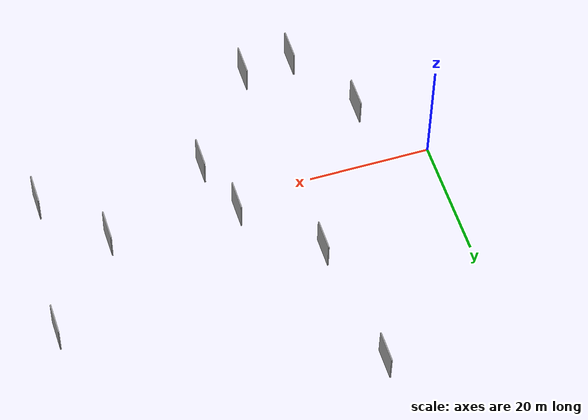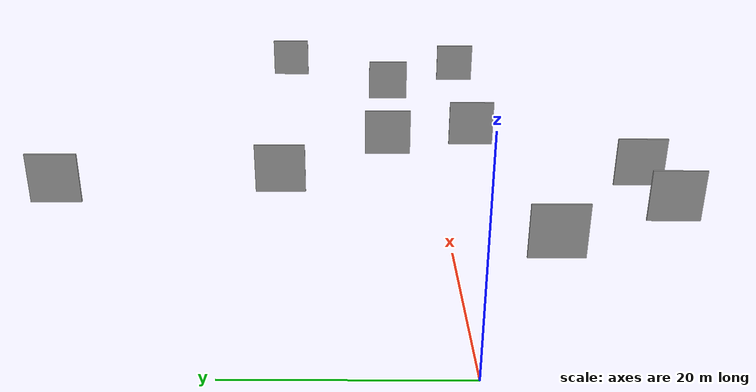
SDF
<sdf version="1.6">
 <world name="default">
  <scene>
   <sky><clouds><speed>12</speed></clouds></sky>
   <ambient>0.4 0.4 0.4 1</ambient>
   <background>0.7 0.7 0.7 1</background>
   <shadows>1</shadows>
  </scene>
  <gravity>0 0 -9.8066</gravity>
  <magnetic_field>6e-06 2.3e-05 -4.2e-05</magnetic_field>
  <physics default="0" name="default_physics" type="ode">
   <ode>
    <solver>
     <type>quick</type>
     <iters>10</iters>
     <sor>1.0</sor>
     <use_dynamic_moi_rescaling>0</use_dynamic_moi_rescaling>
    </solver>
    <constraints>
     <cfm>0</cfm>
     <erp>0.2</erp>
     <contact_max_correcting_vel>100</contact_max_correcting_vel>
     <contact_surface_layer>0.001</contact_surface_layer>
    </constraints>
   </ode>
   <max_step_size>0.004</max_step_size>
   <real_time_factor>1</real_time_factor>
   <real_time_update_rate>250</real_time_update_rate>
  </physics>
  <light name="sun" type="directional">
   <pose>0 0 10 0 0 0</pose>
   <diffuse>0.8 0.8 0.8 1</diffuse>
   <specular>0.2 0.2 0.2 1</specular>
   <attenuation>
    <range>1000</range>
    <constant>0.9</constant>
    <linear>0.01</linear>
    <quadratic>0.001</quadratic>
   </attenuation>
   <direction>-0.5 0.1 -0.9</direction>
  </light>
  <model name="grey_wall_1">
   <static>1</static>
   <pose>21.0704 38.7156 5.0 0.000000 0.000000 1.570796</pose>
   <link name="link">
    <pose>0 0 2.50 0 0 0</pose>
    <collision name="collision"><geometry><box><size>5.00 0.2 5.00</size></box></geometry></collision>
    <visual name="visual">
     <cast_shadows>0</cast_shadows>
     <geometry><box><size>5.00 0.2 5.00</size></box></geometry>
     <material>
      <script>
       <uri>model://grey_wall/materials/scripts</uri>
       <uri>model://grey_wall/materials/textures</uri>
       <name>vrc/grey_wall</name>
      </script>
     </material>
    </visual>
   </link>
  </model>
  <model name="grey_wall_2">
   <static>1</static>
   <pose>17.2706 -20.0038 5.0 0.000000 0.000000 1.570796</pose>
   <link name="link">
    <pose>0 0 2.50 0 0 0</pose>
    <collision name="collision"><geometry><box><size>5.00 0.2 5.00</size></box></geometry></collision>
    <visual name="visual">
     <cast_shadows>0</cast_shadows>
     <geometry><box><size>5.00 0.2 5.00</size></box></geometry>
     <material>
      <script>
       <uri>model://grey_wall/materials/scripts</uri>
       <uri>model://grey_wall/materials/textures</uri>
       <name>vrc/grey_wall</name>
      </script>
     </material>
    </visual>
   </link>
  </model>
  <model name="grey_wall_3">
   <static>1</static>
   <pose>66.7254 19.4458 5.0 0.000000 0.000000 1.570796</pose>
   <link name="link">
    <pose>0 0 2.50 0 0 0</pose>
    <collision name="collision"><geometry><box><size>5.00 0.2 5.00</size></box></geometry></collision>
    <visual name="visual">
     <cast_shadows>0</cast_shadows>
     <geometry><box><size>5.00 0.2 5.00</size></box></geometry>
     <material>
      <script>
       <uri>model://grey_wall/materials/scripts</uri>
       <uri>model://grey_wall/materials/textures</uri>
       <name>vrc/grey_wall</name>
      </script>
     </material>
    </visual>
   </link>
  </model>
  <model name="grey_wall_4">
   <static>1</static>
   <pose>37.2810 -3.5911 5.0 0.000000 0.000000 1.570796</pose>
   <link name="link">
    <pose>0 0 2.50 0 0 0</pose>
    <collision name="collision"><geometry><box><size>5.00 0.2 5.00</size></box></geometry></collision>
    <visual name="visual">
     <cast_shadows>0</cast_shadows>
     <geometry><box><size>5.00 0.2 5.00</size></box></geometry>
     <material>
      <script>
       <uri>model://grey_wall/materials/scripts</uri>
       <uri>model://grey_wall/materials/textures</uri>
       <name>vrc/grey_wall</name>
      </script>
     </material>
    </visual>
   </link>
  </model>
  <model name="grey_wall_5">
   <static>1</static>
   <pose>23.6713 17.0623 5.0 0.000000 0.000000 1.570796</pose>
   <link name="link">
    <pose>0 0 2.50 0 0 0</pose>
    <collision name="collision"><geometry><box><size>5.00 0.2 5.00</size></box></geometry></collision>
    <visual name="visual">
     <cast_shadows>0</cast_shadows>
     <geometry><box><size>5.00 0.2 5.00</size></box></geometry>
     <material>
      <script>
       <uri>model://grey_wall/materials/scripts</uri>
       <uri>model://grey_wall/materials/textures</uri>
       <name>vrc/grey_wall</name>
      </script>
     </material>
    </visual>
   </link>
  </model>
  <model name="grey_wall_6">
   <static>1</static>
   <pose>63.8440 -4.4310 5.0 0.000000 0.000000 1.570796</pose>
   <link name="link">
    <pose>0 0 2.50 0 0 0</pose>
    <collision name="collision"><geometry><box><size>5.00 0.2 5.00</size></box></geometry></collision>
    <visual name="visual">
     <cast_shadows>0</cast_shadows>
     <geometry><box><size>5.00 0.2 5.00</size></box></geometry>
     <material>
      <script>
       <uri>model://grey_wall/materials/scripts</uri>
       <uri>model://grey_wall/materials/textures</uri>
       <name>vrc/grey_wall</name>
      </script>
     </material>
    </visual>
   </link>
  </model>
  <model name="grey_wall_7">
   <static>1</static>
   <pose>54.8888 5.4451 5.0 0.000000 0.000000 1.570796</pose>
   <link name="link">
    <pose>0 0 2.50 0 0 0</pose>
    <collision name="collision"><geometry><box><size>5.00 0.2 5.00</size></box></geometry></collision>
    <visual name="visual">
     <cast_shadows>0</cast_shadows>
     <geometry><box><size>5.00 0.2 5.00</size></box></geometry>
     <material>
      <script>
       <uri>model://grey_wall/materials/scripts</uri>
       <uri>model://grey_wall/materials/textures</uri>
       <name>vrc/grey_wall</name>
      </script>
     </material>
    </visual>
   </link>
  </model>
  <model name="grey_wall_8">
   <static>1</static>
   <pose>10.0714 -7.5660 5.0 0.000000 0.000000 1.570796</pose>
   <link name="link">
    <pose>0 0 2.50 0 0 0</pose>
    <collision name="collision"><geometry><box><size>5.00 0.2 5.00</size></box></geometry></collision>
    <visual name="visual">
     <cast_shadows>0</cast_shadows>
     <geometry><box><size>5.00 0.2 5.00</size></box></geometry>
     <material>
      <script>
       <uri>model://grey_wall/materials/scripts</uri>
       <uri>model://grey_wall/materials/textures</uri>
       <name>vrc/grey_wall</name>
      </script>
     </material>
    </visual>
   </link>
  </model>
  <model name="grey_wall_9">
   <static>1</static>
   <pose>25.5106 -19.2722 5.0 0.000000 0.000000 1.570796</pose>
   <link name="link">
    <pose>0 0 2.50 0 0 0</pose>
    <collision name="collision"><geometry><box><size>5.00 0.2 5.00</size></box></geometry></collision>
    <visual name="visual">
     <cast_shadows>0</cast_shadows>
     <geometry><box><size>5.00 0.2 5.00</size></box></geometry>
     <material>
      <script>
       <uri>model://grey_wall/materials/scripts</uri>
       <uri>model://grey_wall/materials/textures</uri>
       <name>vrc/grey_wall</name>
      </script>
     </material>
    </visual>
   </link>
  </model>
  <model name="grey_wall_10">
   <static>1</static>
   <pose>34.2210 6.0635 5.0 0.000000 0.000000 1.570796</pose>
   <link name="link">
    <pose>0 0 2.50 0 0 0</pose>
    <collision name="collision"><geometry><box><size>5.00 0.2 5.00</size></box></geometry></collision>
    <visual name="visual">
     <cast_shadows>0</cast_shadows>
     <geometry><box><size>5.00 0.2 5.00</size></box></geometry>
     <material>
      <script>
       <uri>model://grey_wall/materials/scripts</uri>
       <uri>model://grey_wall/materials/textures</uri>
       <name>vrc/grey_wall</name>
      </script>
     </material>
    </visual>
   </link>
  </model>
 </world>
</sdf>
